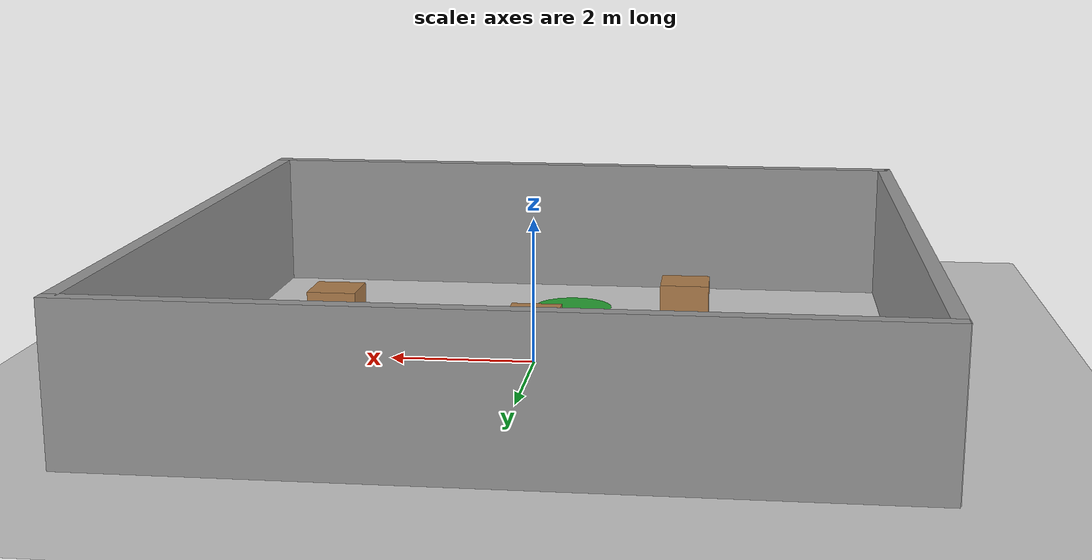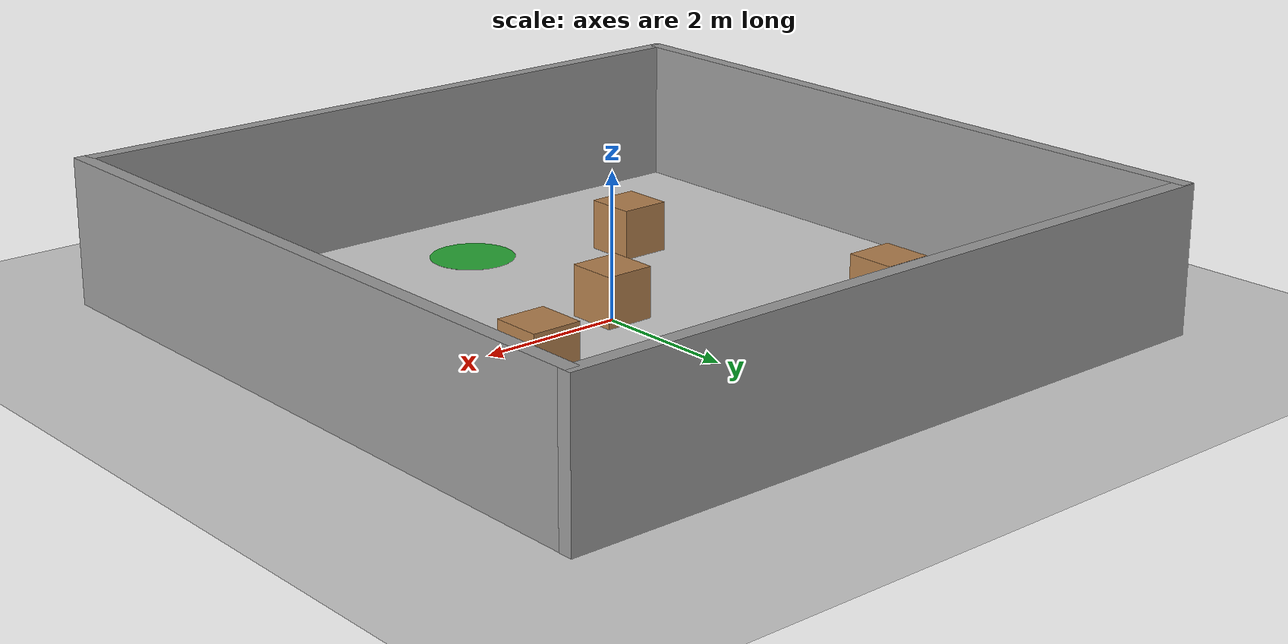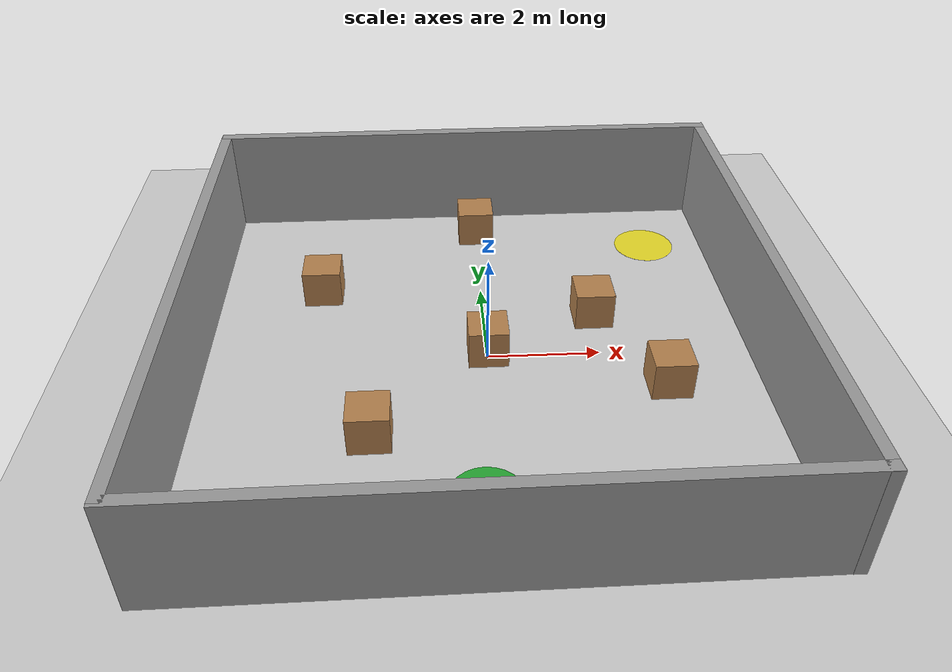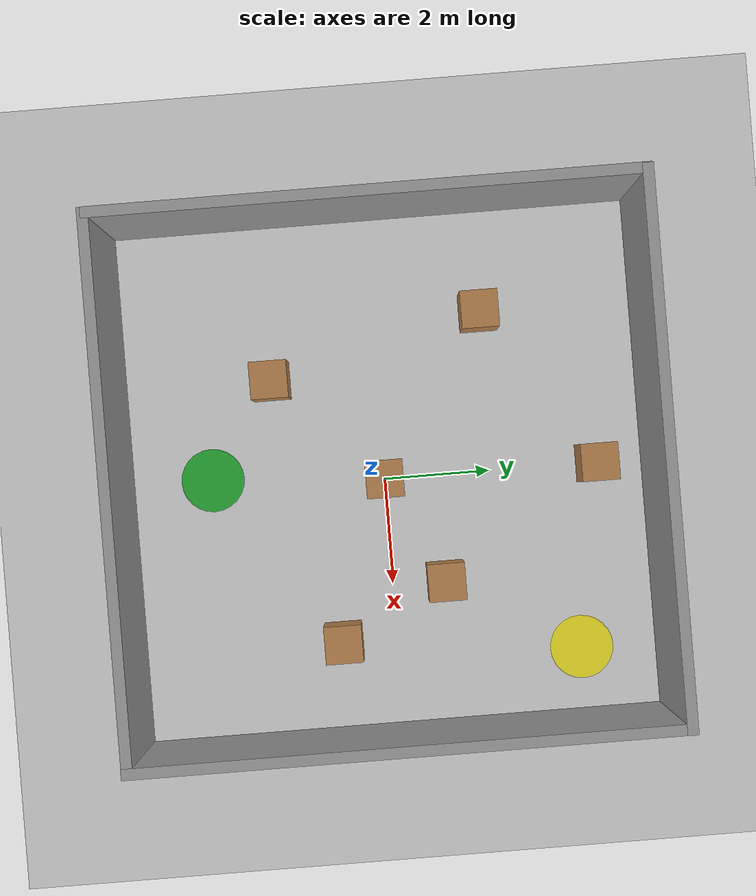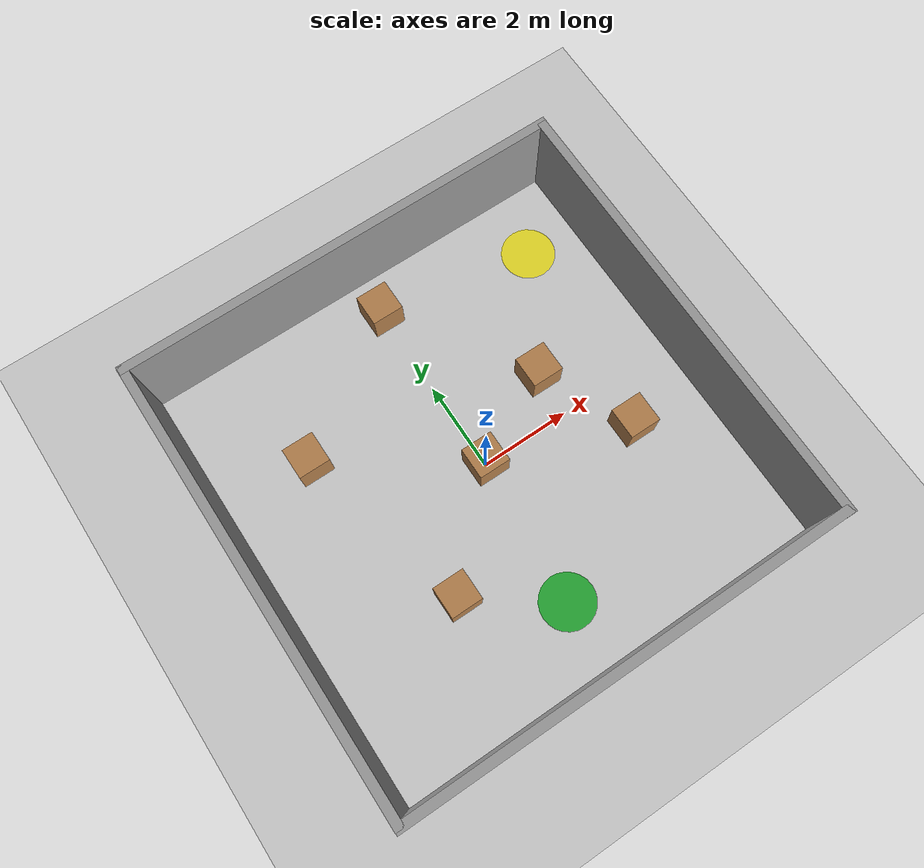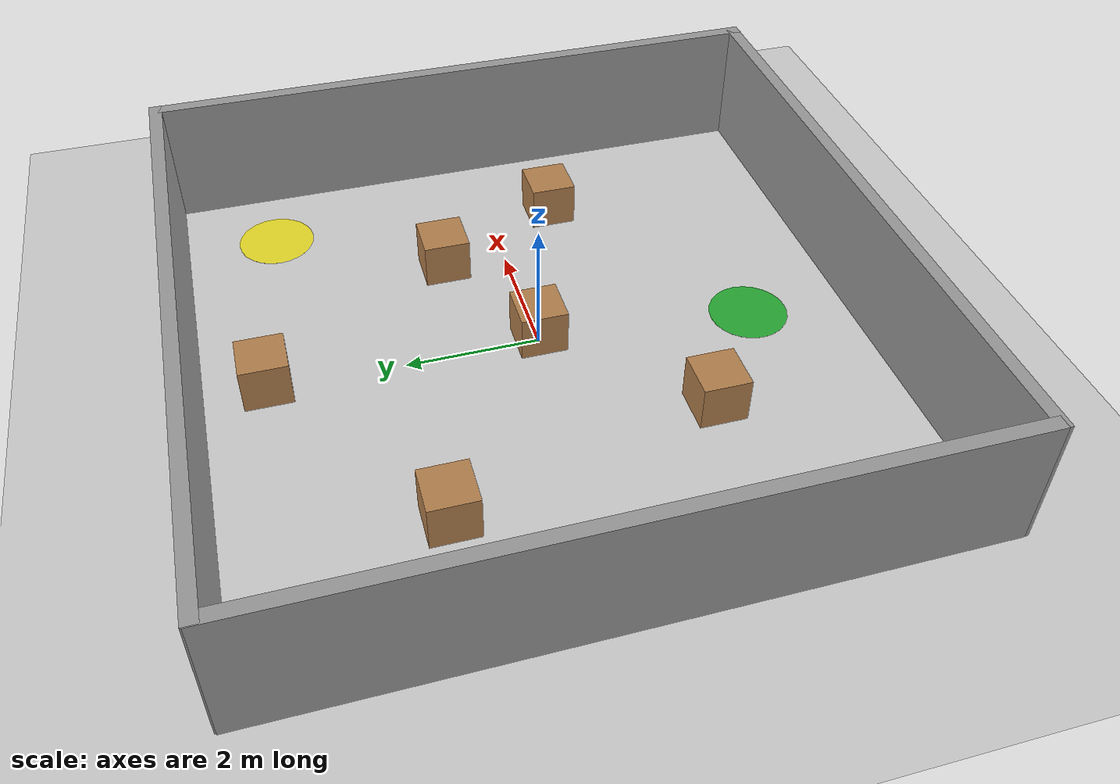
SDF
<sdf version="1.6">
 <world name="default">
  <light name="sun" type="directional">
   <pose>0 0 10 0 -0 0</pose>
   <diffuse>0.8 0.8 0.8 1</diffuse>
   <specular>0.2 0.2 0.2 1</specular>
   <attenuation>
    <range>1000</range>
    <constant>0.9</constant>
    <linear>0.01</linear>
    <quadratic>0.001</quadratic>
   </attenuation>
   <direction>-0.5 0.1 -0.9</direction>
  </light>
  <model name="ground_plane">
   <static>1</static>
   <link name="link">
    <collision name="collision">
     <geometry><plane><normal>0 0 1</normal><size>100 100</size></plane></geometry>
     <surface><friction><ode><mu>100</mu><mu2>50</mu2></ode></friction></surface>
    </collision>
    <visual name="visual">
     <cast_shadows>0</cast_shadows>
     <geometry><plane><normal>0 0 1</normal><size>100 100</size></plane></geometry>
     <material>
      <script><uri>file://media/materials/scripts/gazebo.material</uri><name>Gazebo/Grey</name></script>
     </material>
    </visual>
   </link>
  </model>
  <gravity>0 0 -9.8</gravity>
  <magnetic_field>6e-06 2.3e-05 -4.2e-05</magnetic_field>
  <atmosphere type="adiabatic"/>
  <physics name="default_physics" default="0" type="ode">
   <max_step_size>0.01</max_step_size>
   <real_time_factor>10</real_time_factor>
   <real_time_update_rate>1000</real_time_update_rate>
   <ode><constraints><contact_max_correcting_vel>1.0</contact_max_correcting_vel></constraints></ode>
  </physics>
  <scene><ambient>0.4 0.4 0.4 1</ambient><background>0.7 0.7 0.7 1</background><shadows>1</shadows></scene>
  <spherical_coordinates>
   <surface_model>EARTH_WGS84</surface_model>
   <latitude_deg>0</latitude_deg>
   <longitude_deg>0</longitude_deg>
   <elevation>0</elevation>
   <heading_deg>0</heading_deg>
  </spherical_coordinates>
  <model name="circuit_ground">
   <link name="cube_0">
    <pose>0 0 0.4 0 -0 0</pose>
    <collision name="collision"><geometry><box><size>0.7 0.7 0.7</size></box></geometry></collision>
    <visual name="visual">
     <geometry><box><size>0.7 0.7 0.7</size></box></geometry>
     <material>
      <script><uri>file://media/materials/scripts/gazebo.material</uri><name>Gazebo/Wood</name></script>
     </material>
    </visual>
   </link>
   <link name="cube_1">
    <pose>3 -1 0.4 0 0 0</pose>
    <collision name="collision"><geometry><box><size>0.7 0.7 0.7</size></box></geometry></collision>
    <visual name="visual">
     <geometry><box><size>0.7 0.7 0.7</size></box></geometry>
     <material>
      <script><uri>file://media/materials/scripts/gazebo.material</uri><name>Gazebo/Wood</name></script>
     </material>
    </visual>
   </link>
   <link name="cube_2">
    <pose>2 1 0.4 0 -0 0</pose>
    <collision name="collision"><geometry><box><size>0.7 0.7 0.7</size></box></geometry></collision>
    <visual name="visual">
     <geometry><box><size>0.7 0.7 0.7</size></box></geometry>
     <material>
      <script><uri>file://media/materials/scripts/gazebo.material</uri><name>Gazebo/Wood</name></script>
     </material>
    </visual>
   </link>
   <link name="cube_3">
    <pose>-2 -2 0.4 0 -0 0</pose>
    <collision name="collision"><geometry><box><size>0.7 0.7 0.7</size></box></geometry></collision>
    <visual name="visual">
     <geometry><box><size>0.7 0.7 0.7</size></box></geometry>
     <material>
      <script><uri>file://media/materials/scripts/gazebo.material</uri><name>Gazebo/Wood</name></script>
     </material>
    </visual>
   </link>
   <link name="cube_4">
    <pose>0 4 0.4 0 -0 0</pose>
    <collision name="collision"><geometry><box><size>0.7 0.7 0.7</size></box></geometry></collision>
    <visual name="visual">
     <geometry><box><size>0.7 0.7 0.7</size></box></geometry>
     <material>
      <script><uri>file://media/materials/scripts/gazebo.material</uri><name>Gazebo/Wood</name></script>
     </material>
    </visual>
   </link>
   <link name="cube_5">
    <pose>-3.0 2.0 0.4 0 -0 0</pose>
    <collision name="collision"><geometry><box><size>0.7 0.7 0.7</size></box></geometry></collision>
    <visual name="visual">
     <geometry><box><size>0.7 0.7 0.7</size></box></geometry>
     <material>
      <script><uri>file://media/materials/scripts/gazebo.material</uri><name>Gazebo/Wood</name></script>
     </material>
    </visual>
   </link>
   <link name="wall_0">
    <pose>-0.133521 5.00434 1 0 -0 0</pose>
    <collision name="collision"><geometry><box><size>10 0.2 2</size></box></geometry></collision>
    <visual name="visual">
     <cast_shadows>0</cast_shadows>
     <geometry><box><size>10 0.2 2</size></box></geometry>
     <material>
      <script><uri>file://media/materials/scripts/gazebo.material</uri><name>Gazebo/Grey</name></script>
      <ambient>1 1 1 1</ambient>
     </material>
    </visual>
   </link>
   <link name="wall_1">
    <pose>4.76279 0.019578 1 0 0 -1.5708</pose>
    <collision name="collision"><geometry><box><size>10 0.2 2</size></box></geometry></collision>
    <visual name="visual">
     <cast_shadows>0</cast_shadows>
     <geometry><box><size>10 0.2 2</size></box></geometry>
     <material>
      <script><uri>file://media/materials/scripts/gazebo.material</uri><name>Gazebo/Grey</name></script>
      <ambient>1 1 1 1</ambient>
     </material>
    </visual>
   </link>
   <link name="wall_2">
    <pose>-5.04604 0.081543 1 0 0 -1.5708</pose>
    <collision name="collision"><geometry><box><size>10 0.2 2</size></box></geometry></collision>
    <visual name="visual">
     <cast_shadows>0</cast_shadows>
     <geometry><box><size>10 0.2 2</size></box></geometry>
     <material>
      <script><uri>file://media/materials/scripts/gazebo.material</uri><name>Gazebo/Grey</name></script>
      <ambient>1 1 1 1</ambient>
     </material>
    </visual>
   </link>
   <link name="wall_3">
    <pose>-0.140084 -4.8745 1 0 0 -3.14159</pose>
    <collision name="collision"><geometry><box><size>10 0.2 2</size></box></geometry></collision>
    <visual name="visual">
     <cast_shadows>0</cast_shadows>
     <geometry><box><size>10 0.2 2</size></box></geometry>
     <material>
      <script><uri>file://media/materials/scripts/gazebo.material</uri><name>Gazebo/Grey</name></script>
      <ambient>1 1 1 1</ambient>
     </material>
    </visual>
   </link>
   <link name="target">
    <pose>3.5 3.5 0 0 -0 0</pose>
    <visual name="visual">
     <geometry><cylinder><radius>0.6</radius><length>0.001</length></cylinder></geometry>
     <material>
      <script><uri>file://media/materials/scripts/gazebo.material</uri><name>Gazebo/Yellow</name></script>
      <ambient>1 1 1 1</ambient>
     </material>
     <cast_shadows>0</cast_shadows>
    </visual>
   </link>
   <link name="start">
    <pose>-0.222404 -3.27274 0 0 -0 0</pose>
    <visual name="visual">
     <geometry><cylinder><radius>0.6</radius><length>0.001</length></cylinder></geometry>
     <material>
      <script><uri>file://media/materials/scripts/gazebo.material</uri><name>Gazebo/Green</name></script>
      <ambient>1 1 1 1</ambient>
     </material>
     <cast_shadows>0</cast_shadows>
    </visual>
   </link>
   <static>1</static>
  </model>
 </world>
</sdf>
